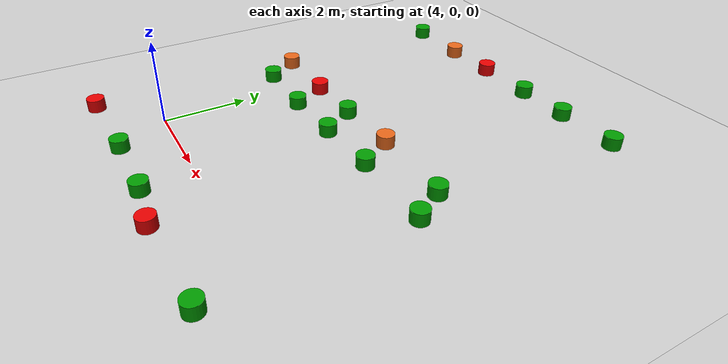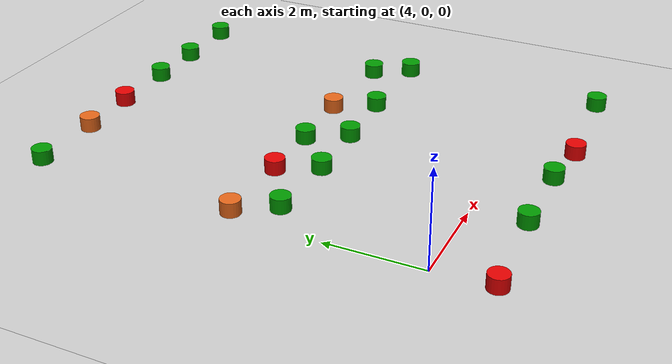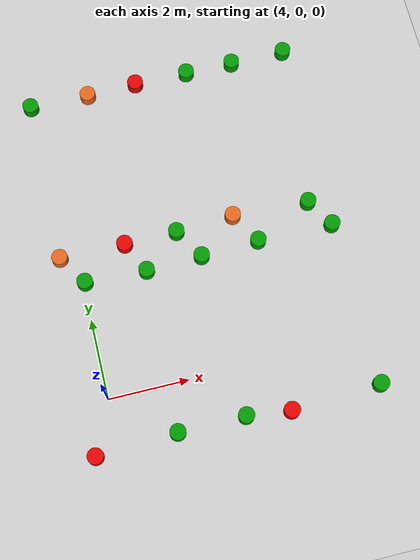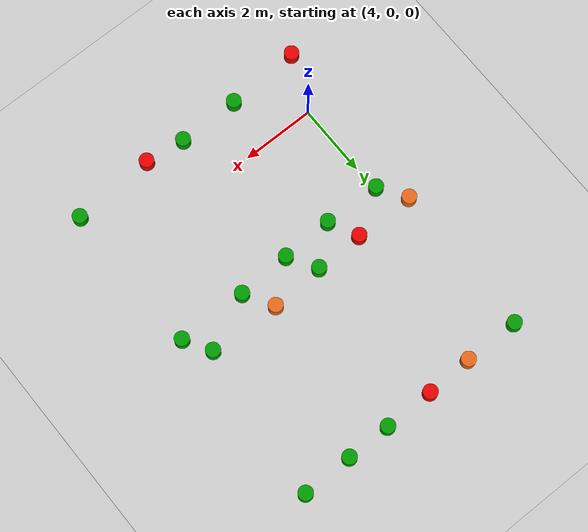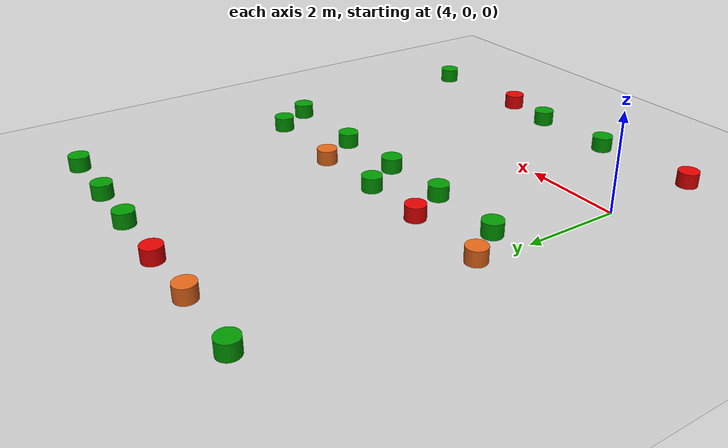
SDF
<sdf version="1.7">
 <world name="default">
  <model name="ground_plane">
   <static>1</static>
   <link name="link">
    <collision name="collision">
     <geometry><plane><normal>0 0 1</normal><size>100 100</size></plane></geometry>
     <surface><friction><ode><mu>100</mu><mu2>50</mu2></ode></friction></surface>
    </collision>
    <visual name="visual">
     <cast_shadows>0</cast_shadows>
     <geometry><plane><normal>0 0 1</normal><size>100 100</size></plane></geometry>
     <material>
      <script><uri>file://media/materials/scripts/gazebo.material</uri><name>Gazebo/Grey</name></script>
     </material>
    </visual>
   </link>
  </model>
  <model name="Test_pot_green">
   <link name="link_0">
    <inertial>
     <mass>0.044841</mass>
     <inertia>
      <ixx>0.00074807</ixx>
      <ixy>0</ixy>
      <ixz>0</ixz>
      <iyy>0.00074807</iyy>
      <iyz>0</iyz>
      <izz>0.00086495</izz>
     </inertia>
    </inertial>
    <pose>3e-06 1e-06 0 0 -0 0</pose>
    <visual name="visual">
     <geometry><cylinder><radius>0.196415</radius><length>0.290612</length></cylinder></geometry>
     <material>
      <lighting>1</lighting>
      <script><uri>file://media/materials/scripts/gazebo.material</uri><name>Gazebo/Grey</name></script>
      <shader type="pixel"><normal_map>__default__</normal_map></shader>
      <diffuse>0 0.6 0 0</diffuse>
      <ambient>0.3 0.3 0.3 1</ambient>
      <specular>0.01 0.01 0.01 1</specular>
      <emissive>0 0 0 1</emissive>
     </material>
    </visual>
    <collision name="collision">
     <geometry><cylinder><radius>0.196415</radius><length>0.290612</length></cylinder></geometry>
     <surface>
      <friction>
       <ode><mu>1</mu><mu2>1</mu2><fdir1>0 0 0</fdir1><slip1>0</slip1><slip2>0</slip2></ode>
       <torsional>
        <coefficient>1</coefficient>
        <patch_radius>0</patch_radius>
        <surface_radius>0</surface_radius>
        <use_patch_radius>1</use_patch_radius>
        <ode><slip>0</slip></ode>
       </torsional>
      </friction>
      <bounce><restitution_coefficient>0</restitution_coefficient><threshold>1e+06</threshold></bounce>
      <contact>
       <collide_without_contact>0</collide_without_contact>
       <collide_without_contact_bitmask>1</collide_without_contact_bitmask>
       <collide_bitmask>1</collide_bitmask>
       <ode>
        <soft_cfm>0</soft_cfm>
        <soft_erp>0.2</soft_erp>
        <kp>1e+13</kp>
        <kd>1</kd>
        <max_vel>0.01</max_vel>
        <min_depth>0</min_depth>
       </ode>
       <bullet>
        <split_impulse>1</split_impulse>
        <split_impulse_penetration_threshold>-0.01</split_impulse_penetration_threshold>
        <soft_cfm>0</soft_cfm>
        <soft_erp>0.2</soft_erp>
        <kp>1e+13</kp>
        <kd>1</kd>
       </bullet>
      </contact>
     </surface>
    </collision>
   </link>
   <static>0</static>
   <pose>3.66478 7.67336 0.575569 3.5e-05 1e-06 -0.002797</pose>
  </model>
  <model name="Test_pot_red">
   <link name="link_0">
    <inertial>
     <mass>0.044841</mass>
     <inertia>
      <ixx>0.00074807</ixx>
      <ixy>0</ixy>
      <ixz>0</ixz>
      <iyy>0.00074807</iyy>
      <iyz>0</iyz>
      <izz>0.00086495</izz>
     </inertia>
    </inertial>
    <pose>3e-06 1e-06 -0 0 -0 0</pose>
    <visual name="visual">
     <geometry><cylinder><radius>0.196415</radius><length>0.290612</length></cylinder></geometry>
     <material>
      <lighting>1</lighting>
      <script><uri>file://media/materials/scripts/gazebo.material</uri><name>Gazebo/Grey</name></script>
      <shader type="pixel"><normal_map>__default__</normal_map></shader>
      <ambient>0.3 0.3 0.3 1</ambient>
      <diffuse>0.9 0 0 1</diffuse>
      <specular>0.01 0.01 0.01 1</specular>
      <emissive>0 0 0 1</emissive>
     </material>
    </visual>
    <collision name="collision">
     <geometry><cylinder><radius>0.196415</radius><length>0.290612</length></cylinder></geometry>
     <surface>
      <friction>
       <ode><mu>1</mu><mu2>1</mu2><fdir1>0 0 0</fdir1><slip1>0</slip1><slip2>0</slip2></ode>
       <torsional>
        <coefficient>1</coefficient>
        <patch_radius>0</patch_radius>
        <surface_radius>0</surface_radius>
        <use_patch_radius>1</use_patch_radius>
        <ode><slip>0</slip></ode>
       </torsional>
      </friction>
      <bounce><restitution_coefficient>0</restitution_coefficient><threshold>1e+06</threshold></bounce>
      <contact>
       <collide_without_contact>0</collide_without_contact>
       <collide_without_contact_bitmask>1</collide_without_contact_bitmask>
       <collide_bitmask>1</collide_bitmask>
       <ode>
        <soft_cfm>0</soft_cfm>
        <soft_erp>0.2</soft_erp>
        <kp>1e+13</kp>
        <kd>1</kd>
        <max_vel>0.01</max_vel>
        <min_depth>0</min_depth>
       </ode>
       <bullet>
        <split_impulse>1</split_impulse>
        <split_impulse_penetration_threshold>-0.01</split_impulse_penetration_threshold>
        <soft_cfm>0</soft_cfm>
        <soft_erp>0.2</soft_erp>
        <kp>1e+13</kp>
        <kd>1</kd>
       </bullet>
      </contact>
     </surface>
    </collision>
   </link>
   <static>0</static>
   <pose>6.40214 7.70189 0.575568 3e-06 1e-06 -0.004789</pose>
  </model>
  <model name="Test_pot_orange">
   <link name="link_0">
    <inertial>
     <mass>0.044841</mass>
     <inertia>
      <ixx>0.00074807</ixx>
      <ixy>0</ixy>
      <ixz>0</ixz>
      <iyy>0.00074807</iyy>
      <iyz>0</iyz>
      <izz>0.00086495</izz>
     </inertia>
    </inertial>
    <pose>3e-06 1e-06 -0 0 -0 0</pose>
    <visual name="visual">
     <geometry><cylinder><radius>0.196415</radius><length>0.290612</length></cylinder></geometry>
     <material>
      <lighting>1</lighting>
      <script><uri>file://media/materials/scripts/gazebo.material</uri><name>Gazebo/Grey</name></script>
      <shader type="pixel"><normal_map>__default__</normal_map></shader>
      <ambient>0.3 0.3 0.3 1</ambient>
      <diffuse>0.9 0.4 0.1 1</diffuse>
      <specular>0.01 0.01 0.01 1</specular>
      <emissive>0 0 0 1</emissive>
     </material>
    </visual>
    <collision name="collision">
     <geometry><cylinder><radius>0.196415</radius><length>0.290612</length></cylinder></geometry>
     <surface>
      <friction>
       <ode><mu>1</mu><mu2>1</mu2><fdir1>0 0 0</fdir1><slip1>0</slip1><slip2>0</slip2></ode>
       <torsional>
        <coefficient>1</coefficient>
        <patch_radius>0</patch_radius>
        <surface_radius>0</surface_radius>
        <use_patch_radius>1</use_patch_radius>
        <ode><slip>0</slip></ode>
       </torsional>
      </friction>
      <bounce><restitution_coefficient>0</restitution_coefficient><threshold>1e+06</threshold></bounce>
      <contact>
       <collide_without_contact>0</collide_without_contact>
       <collide_without_contact_bitmask>1</collide_without_contact_bitmask>
       <collide_bitmask>1</collide_bitmask>
       <ode>
        <soft_cfm>0</soft_cfm>
        <soft_erp>0.2</soft_erp>
        <kp>1e+13</kp>
        <kd>1</kd>
        <max_vel>0.01</max_vel>
        <min_depth>0</min_depth>
       </ode>
       <bullet>
        <split_impulse>1</split_impulse>
        <split_impulse_penetration_threshold>-0.01</split_impulse_penetration_threshold>
        <soft_cfm>0</soft_cfm>
        <soft_erp>0.2</soft_erp>
        <kp>1e+13</kp>
        <kd>1</kd>
       </bullet>
      </contact>
     </surface>
    </collision>
   </link>
   <static>0</static>
   <pose>5.14852 7.66622 0.575578 -3.6e-05 -4e-06 -0.002668</pose>
  </model>
  <model name="Test_pot_green_clone">
   <link name="link_0">
    <inertial>
     <mass>0.044841</mass>
     <inertia>
      <ixx>0.00074807</ixx>
      <ixy>0</ixy>
      <ixz>0</ixz>
      <iyy>0.00074807</iyy>
      <iyz>0</iyz>
      <izz>0.00086495</izz>
     </inertia>
    </inertial>
    <pose>3e-06 1e-06 0 0 -0 0</pose>
    <visual name="visual">
     <geometry><cylinder><radius>0.196415</radius><length>0.290612</length></cylinder></geometry>
     <material>
      <lighting>1</lighting>
      <script><uri>file://media/materials/scripts/gazebo.material</uri><name>Gazebo/Grey</name></script>
      <shader type="pixel"><normal_map>__default__</normal_map></shader>
      <diffuse>0 0.6 0 0</diffuse>
      <ambient>0.3 0.3 0.3 1</ambient>
      <specular>0.01 0.01 0.01 1</specular>
      <emissive>0 0 0 1</emissive>
     </material>
    </visual>
    <collision name="collision">
     <geometry><cylinder><radius>0.196415</radius><length>0.290612</length></cylinder></geometry>
     <surface>
      <friction>
       <ode><mu>1</mu><mu2>1</mu2><fdir1>0 0 0</fdir1><slip1>0</slip1><slip2>0</slip2></ode>
       <torsional>
        <coefficient>1</coefficient>
        <patch_radius>0</patch_radius>
        <surface_radius>0</surface_radius>
        <use_patch_radius>1</use_patch_radius>
        <ode><slip>0</slip></ode>
       </torsional>
      </friction>
      <bounce><restitution_coefficient>0</restitution_coefficient><threshold>1e+06</threshold></bounce>
      <contact>
       <collide_without_contact>0</collide_without_contact>
       <collide_without_contact_bitmask>1</collide_without_contact_bitmask>
       <collide_bitmask>1</collide_bitmask>
       <ode>
        <soft_cfm>0</soft_cfm>
        <soft_erp>0.2</soft_erp>
        <kp>1e+13</kp>
        <kd>1</kd>
        <max_vel>0.01</max_vel>
        <min_depth>0</min_depth>
       </ode>
       <bullet>
        <split_impulse>1</split_impulse>
        <split_impulse_penetration_threshold>-0.01</split_impulse_penetration_threshold>
        <soft_cfm>0</soft_cfm>
        <soft_erp>0.2</soft_erp>
        <kp>1e+13</kp>
        <kd>1</kd>
       </bullet>
      </contact>
     </surface>
    </collision>
   </link>
   <static>0</static>
   <pose>7.74714 7.70175 0.575592 1.6e-05 5e-06 0.000895</pose>
  </model>
  <model name="Test_pot_green_clone_0">
   <link name="link_0">
    <inertial>
     <mass>0.044841</mass>
     <inertia>
      <ixx>0.00074807</ixx>
      <ixy>0</ixy>
      <ixz>0</ixz>
      <iyy>0.00074807</iyy>
      <iyz>0</iyz>
      <izz>0.00086495</izz>
     </inertia>
    </inertial>
    <pose>3e-06 1e-06 0 0 -0 0</pose>
    <visual name="visual">
     <geometry><cylinder><radius>0.196415</radius><length>0.290612</length></cylinder></geometry>
     <material>
      <lighting>1</lighting>
      <script><uri>file://media/materials/scripts/gazebo.material</uri><name>Gazebo/Grey</name></script>
      <shader type="pixel"><normal_map>__default__</normal_map></shader>
      <diffuse>0 0.6 0 0</diffuse>
      <ambient>0.3 0.3 0.3 1</ambient>
      <specular>0.01 0.01 0.01 1</specular>
      <emissive>0 0 0 1</emissive>
     </material>
    </visual>
    <collision name="collision">
     <geometry><cylinder><radius>0.196415</radius><length>0.290612</length></cylinder></geometry>
     <surface>
      <friction>
       <ode><mu>1</mu><mu2>1</mu2><fdir1>0 0 0</fdir1><slip1>0</slip1><slip2>0</slip2></ode>
       <torsional>
        <coefficient>1</coefficient>
        <patch_radius>0</patch_radius>
        <surface_radius>0</surface_radius>
        <use_patch_radius>1</use_patch_radius>
        <ode><slip>0</slip></ode>
       </torsional>
      </friction>
      <bounce><restitution_coefficient>0</restitution_coefficient><threshold>1e+06</threshold></bounce>
      <contact>
       <collide_without_contact>0</collide_without_contact>
       <collide_without_contact_bitmask>1</collide_without_contact_bitmask>
       <collide_bitmask>1</collide_bitmask>
       <ode>
        <soft_cfm>0</soft_cfm>
        <soft_erp>0.2</soft_erp>
        <kp>1e+13</kp>
        <kd>1</kd>
        <max_vel>0.01</max_vel>
        <min_depth>0</min_depth>
       </ode>
       <bullet>
        <split_impulse>1</split_impulse>
        <split_impulse_penetration_threshold>-0.01</split_impulse_penetration_threshold>
        <soft_cfm>0</soft_cfm>
        <soft_erp>0.2</soft_erp>
        <kp>1e+13</kp>
        <kd>1</kd>
       </bullet>
      </contact>
     </surface>
    </collision>
   </link>
   <static>0</static>
   <pose>8.95 7.70055 0.575573 -2.3e-05 -2e-06 -0.001644</pose>
  </model>
  <model name="Test_pot_green_clone_1">
   <link name="link_0">
    <inertial>
     <mass>0.044841</mass>
     <inertia>
      <ixx>0.00074807</ixx>
      <ixy>0</ixy>
      <ixz>0</ixz>
      <iyy>0.00074807</iyy>
      <iyz>0</iyz>
      <izz>0.00086495</izz>
     </inertia>
    </inertial>
    <pose>3e-06 1e-06 0 0 -0 0</pose>
    <visual name="visual">
     <geometry><cylinder><radius>0.196415</radius><length>0.290612</length></cylinder></geometry>
     <material>
      <lighting>1</lighting>
      <script><uri>file://media/materials/scripts/gazebo.material</uri><name>Gazebo/Grey</name></script>
      <shader type="pixel"><normal_map>__default__</normal_map></shader>
      <diffuse>0 0.6 0 0</diffuse>
      <ambient>0.3 0.3 0.3 1</ambient>
      <specular>0.01 0.01 0.01 1</specular>
      <emissive>0 0 0 1</emissive>
     </material>
    </visual>
    <collision name="collision">
     <geometry><cylinder><radius>0.196415</radius><length>0.290612</length></cylinder></geometry>
     <surface>
      <friction>
       <ode><mu>1</mu><mu2>1</mu2><fdir1>0 0 0</fdir1><slip1>0</slip1><slip2>0</slip2></ode>
       <torsional>
        <coefficient>1</coefficient>
        <patch_radius>0</patch_radius>
        <surface_radius>0</surface_radius>
        <use_patch_radius>1</use_patch_radius>
        <ode><slip>0</slip></ode>
       </torsional>
      </friction>
      <bounce><restitution_coefficient>0</restitution_coefficient><threshold>1e+06</threshold></bounce>
      <contact>
       <collide_without_contact>0</collide_without_contact>
       <collide_without_contact_bitmask>1</collide_without_contact_bitmask>
       <collide_bitmask>1</collide_bitmask>
       <ode>
        <soft_cfm>0</soft_cfm>
        <soft_erp>0.2</soft_erp>
        <kp>1e+13</kp>
        <kd>1</kd>
        <max_vel>0.01</max_vel>
        <min_depth>0</min_depth>
       </ode>
       <bullet>
        <split_impulse>1</split_impulse>
        <split_impulse_penetration_threshold>-0.01</split_impulse_penetration_threshold>
        <soft_cfm>0</soft_cfm>
        <soft_erp>0.2</soft_erp>
        <kp>1e+13</kp>
        <kd>1</kd>
       </bullet>
      </contact>
     </surface>
    </collision>
   </link>
   <static>0</static>
   <pose>10.3223 7.71373 0.575575 -3e-05 -5e-06 -0.004784</pose>
  </model>
  <model name="Test_pot_orange_clone_0">
   <link name="link_0">
    <inertial>
     <mass>0.044841</mass>
     <inertia>
      <ixx>0.00074807</ixx>
      <ixy>0</ixy>
      <ixz>0</ixz>
      <iyy>0.00074807</iyy>
      <iyz>0</iyz>
      <izz>0.00086495</izz>
     </inertia>
    </inertial>
    <pose>3e-06 1e-06 -0 0 -0 0</pose>
    <visual name="visual">
     <geometry><cylinder><radius>0.196415</radius><length>0.290612</length></cylinder></geometry>
     <material>
      <lighting>1</lighting>
      <script><uri>file://media/materials/scripts/gazebo.material</uri><name>Gazebo/Grey</name></script>
      <shader type="pixel"><normal_map>__default__</normal_map></shader>
      <ambient>0.3 0.3 0.3 1</ambient>
      <diffuse>0.9 0.4 0.1 1</diffuse>
      <specular>0.01 0.01 0.01 1</specular>
      <emissive>0 0 0 1</emissive>
     </material>
    </visual>
    <collision name="collision">
     <geometry><cylinder><radius>0.196415</radius><length>0.290612</length></cylinder></geometry>
     <surface>
      <friction>
       <ode><mu>1</mu><mu2>1</mu2><fdir1>0 0 0</fdir1><slip1>0</slip1><slip2>0</slip2></ode>
       <torsional>
        <coefficient>1</coefficient>
        <patch_radius>0</patch_radius>
        <surface_radius>0</surface_radius>
        <use_patch_radius>1</use_patch_radius>
        <ode><slip>0</slip></ode>
       </torsional>
      </friction>
      <bounce><restitution_coefficient>0</restitution_coefficient><threshold>1e+06</threshold></bounce>
      <contact>
       <collide_without_contact>0</collide_without_contact>
       <collide_without_contact_bitmask>1</collide_without_contact_bitmask>
       <collide_bitmask>1</collide_bitmask>
       <ode>
        <soft_cfm>0</soft_cfm>
        <soft_erp>0.2</soft_erp>
        <kp>1e+13</kp>
        <kd>1</kd>
        <max_vel>0.01</max_vel>
        <min_depth>0</min_depth>
       </ode>
       <bullet>
        <split_impulse>1</split_impulse>
        <split_impulse_penetration_threshold>-0.01</split_impulse_penetration_threshold>
        <soft_cfm>0</soft_cfm>
        <soft_erp>0.2</soft_erp>
        <kp>1e+13</kp>
        <kd>1</kd>
       </bullet>
      </contact>
     </surface>
    </collision>
   </link>
   <static>0</static>
   <pose>3.59683 3.54736 0.57558 -1.1e-05 1e-06 -9e-06</pose>
  </model>
  <model name="Test_pot_orange_clone_1">
   <link name="link_0">
    <inertial>
     <mass>0.044841</mass>
     <inertia>
      <ixx>0.00074807</ixx>
      <ixy>0</ixy>
      <ixz>0</ixz>
      <iyy>0.00074807</iyy>
      <iyz>0</iyz>
      <izz>0.00086495</izz>
     </inertia>
    </inertial>
    <pose>3e-06 1e-06 -0 0 -0 0</pose>
    <visual name="visual">
     <geometry><cylinder><radius>0.196415</radius><length>0.290612</length></cylinder></geometry>
     <material>
      <lighting>1</lighting>
      <script><uri>file://media/materials/scripts/gazebo.material</uri><name>Gazebo/Grey</name></script>
      <shader type="pixel"><normal_map>__default__</normal_map></shader>
      <ambient>0.3 0.3 0.3 1</ambient>
      <diffuse>0.9 0.4 0.1 1</diffuse>
      <specular>0.01 0.01 0.01 1</specular>
      <emissive>0 0 0 1</emissive>
     </material>
    </visual>
    <collision name="collision">
     <geometry><cylinder><radius>0.196415</radius><length>0.290612</length></cylinder></geometry>
     <surface>
      <friction>
       <ode><mu>1</mu><mu2>1</mu2><fdir1>0 0 0</fdir1><slip1>0</slip1><slip2>0</slip2></ode>
       <torsional>
        <coefficient>1</coefficient>
        <patch_radius>0</patch_radius>
        <surface_radius>0</surface_radius>
        <use_patch_radius>1</use_patch_radius>
        <ode><slip>0</slip></ode>
       </torsional>
      </friction>
      <bounce><restitution_coefficient>0</restitution_coefficient><threshold>1e+06</threshold></bounce>
      <contact>
       <collide_without_contact>0</collide_without_contact>
       <collide_without_contact_bitmask>1</collide_without_contact_bitmask>
       <collide_bitmask>1</collide_bitmask>
       <ode>
        <soft_cfm>0</soft_cfm>
        <soft_erp>0.2</soft_erp>
        <kp>1e+13</kp>
        <kd>1</kd>
        <max_vel>0.01</max_vel>
        <min_depth>0</min_depth>
       </ode>
       <bullet>
        <split_impulse>1</split_impulse>
        <split_impulse_penetration_threshold>-0.01</split_impulse_penetration_threshold>
        <soft_cfm>0</soft_cfm>
        <soft_erp>0.2</soft_erp>
        <kp>1e+13</kp>
        <kd>1</kd>
       </bullet>
      </contact>
     </surface>
    </collision>
   </link>
   <static>0</static>
   <pose>7.97331 3.6356 0.575589 3.4e-05 -5e-06 0.005156</pose>
  </model>
  <model name="Test_pot_red_clone_1">
   <link name="link_0">
    <inertial>
     <mass>0.044841</mass>
     <inertia>
      <ixx>0.00074807</ixx>
      <ixy>0</ixy>
      <ixz>0</ixz>
      <iyy>0.00074807</iyy>
      <iyz>0</iyz>
      <izz>0.00086495</izz>
     </inertia>
    </inertial>
    <pose>3e-06 1e-06 -0 0 -0 0</pose>
    <visual name="visual">
     <geometry><cylinder><radius>0.196415</radius><length>0.290612</length></cylinder></geometry>
     <material>
      <lighting>1</lighting>
      <script><uri>file://media/materials/scripts/gazebo.material</uri><name>Gazebo/Grey</name></script>
      <shader type="pixel"><normal_map>__default__</normal_map></shader>
      <ambient>0.3 0.3 0.3 1</ambient>
      <diffuse>0.9 0 0 1</diffuse>
      <specular>0.01 0.01 0.01 1</specular>
      <emissive>0 0 0 1</emissive>
     </material>
    </visual>
    <collision name="collision">
     <geometry><cylinder><radius>0.196415</radius><length>0.290612</length></cylinder></geometry>
     <surface>
      <friction>
       <ode><mu>1</mu><mu2>1</mu2><fdir1>0 0 0</fdir1><slip1>0</slip1><slip2>0</slip2></ode>
       <torsional>
        <coefficient>1</coefficient>
        <patch_radius>0</patch_radius>
        <surface_radius>0</surface_radius>
        <use_patch_radius>1</use_patch_radius>
        <ode><slip>0</slip></ode>
       </torsional>
      </friction>
      <bounce><restitution_coefficient>0</restitution_coefficient><threshold>1e+06</threshold></bounce>
      <contact>
       <collide_without_contact>0</collide_without_contact>
       <collide_without_contact_bitmask>1</collide_without_contact_bitmask>
       <collide_bitmask>1</collide_bitmask>
       <ode>
        <soft_cfm>0</soft_cfm>
        <soft_erp>0.2</soft_erp>
        <kp>1e+13</kp>
        <kd>1</kd>
        <max_vel>0.01</max_vel>
        <min_depth>0</min_depth>
       </ode>
       <bullet>
        <split_impulse>1</split_impulse>
        <split_impulse_penetration_threshold>-0.01</split_impulse_penetration_threshold>
        <soft_cfm>0</soft_cfm>
        <soft_erp>0.2</soft_erp>
        <kp>1e+13</kp>
        <kd>1</kd>
       </bullet>
      </contact>
     </surface>
    </collision>
   </link>
   <static>0</static>
   <pose>5.21374 3.53401 0.57558 -1.2e-05 -3e-06 0.004102</pose>
  </model>
  <model name="Test_pot_red_clone_4">
   <link name="link_0">
    <inertial>
     <mass>0.044841</mass>
     <inertia>
      <ixx>0.00074807</ixx>
      <ixy>0</ixy>
      <ixz>0</ixz>
      <iyy>0.00074807</iyy>
      <iyz>0</iyz>
      <izz>0.00086495</izz>
     </inertia>
    </inertial>
    <pose>3e-06 1e-06 -0 0 -0 0</pose>
    <visual name="visual">
     <geometry><cylinder><radius>0.196415</radius><length>0.290612</length></cylinder></geometry>
     <material>
      <lighting>1</lighting>
      <script><uri>file://media/materials/scripts/gazebo.material</uri><name>Gazebo/Grey</name></script>
      <shader type="pixel"><normal_map>__default__</normal_map></shader>
      <ambient>0.3 0.3 0.3 1</ambient>
      <diffuse>0.9 0 0 1</diffuse>
      <specular>0.01 0.01 0.01 1</specular>
      <emissive>0 0 0 1</emissive>
     </material>
    </visual>
    <collision name="collision">
     <geometry><cylinder><radius>0.196415</radius><length>0.290612</length></cylinder></geometry>
     <surface>
      <friction>
       <ode><mu>1</mu><mu2>1</mu2><fdir1>0 0 0</fdir1><slip1>0</slip1><slip2>0</slip2></ode>
       <torsional>
        <coefficient>1</coefficient>
        <patch_radius>0</patch_radius>
        <surface_radius>0</surface_radius>
        <use_patch_radius>1</use_patch_radius>
        <ode><slip>0</slip></ode>
       </torsional>
      </friction>
      <bounce><restitution_coefficient>0</restitution_coefficient><threshold>1e+06</threshold></bounce>
      <contact>
       <collide_without_contact>0</collide_without_contact>
       <collide_without_contact_bitmask>1</collide_without_contact_bitmask>
       <collide_bitmask>1</collide_bitmask>
       <ode>
        <soft_cfm>0</soft_cfm>
        <soft_erp>0.2</soft_erp>
        <kp>1e+13</kp>
        <kd>1</kd>
        <max_vel>0.01</max_vel>
        <min_depth>0</min_depth>
       </ode>
       <bullet>
        <split_impulse>1</split_impulse>
        <split_impulse_penetration_threshold>-0.01</split_impulse_penetration_threshold>
        <soft_cfm>0</soft_cfm>
        <soft_erp>0.2</soft_erp>
        <kp>1e+13</kp>
        <kd>1</kd>
       </bullet>
      </contact>
     </surface>
    </collision>
   </link>
   <static>0</static>
   <pose>3.46294 -1.34132 0.575594 -3.4e-05 4e-06 0.001033</pose>
  </model>
  <model name="Test_pot_red_clone_5">
   <link name="link_0">
    <inertial>
     <mass>0.044841</mass>
     <inertia>
      <ixx>0.00074807</ixx>
      <ixy>0</ixy>
      <ixz>0</ixz>
      <iyy>0.00074807</iyy>
      <iyz>0</iyz>
      <izz>0.00086495</izz>
     </inertia>
    </inertial>
    <pose>3e-06 1e-06 -0 0 -0 0</pose>
    <visual name="visual">
     <geometry><cylinder><radius>0.196415</radius><length>0.290612</length></cylinder></geometry>
     <material>
      <lighting>1</lighting>
      <script><uri>file://media/materials/scripts/gazebo.material</uri><name>Gazebo/Grey</name></script>
      <shader type="pixel"><normal_map>__default__</normal_map></shader>
      <ambient>0.3 0.3 0.3 1</ambient>
      <diffuse>0.9 0 0 1</diffuse>
      <specular>0.01 0.01 0.01 1</specular>
      <emissive>0 0 0 1</emissive>
     </material>
    </visual>
    <collision name="collision">
     <geometry><cylinder><radius>0.196415</radius><length>0.290612</length></cylinder></geometry>
     <surface>
      <friction>
       <ode><mu>1</mu><mu2>1</mu2><fdir1>0 0 0</fdir1><slip1>0</slip1><slip2>0</slip2></ode>
       <torsional>
        <coefficient>1</coefficient>
        <patch_radius>0</patch_radius>
        <surface_radius>0</surface_radius>
        <use_patch_radius>1</use_patch_radius>
        <ode><slip>0</slip></ode>
       </torsional>
      </friction>
      <bounce><restitution_coefficient>0</restitution_coefficient><threshold>1e+06</threshold></bounce>
      <contact>
       <collide_without_contact>0</collide_without_contact>
       <collide_without_contact_bitmask>1</collide_without_contact_bitmask>
       <collide_bitmask>1</collide_bitmask>
       <ode>
        <soft_cfm>0</soft_cfm>
        <soft_erp>0.2</soft_erp>
        <kp>1e+13</kp>
        <kd>1</kd>
        <max_vel>0.01</max_vel>
        <min_depth>0</min_depth>
       </ode>
       <bullet>
        <split_impulse>1</split_impulse>
        <split_impulse_penetration_threshold>-0.01</split_impulse_penetration_threshold>
        <soft_cfm>0</soft_cfm>
        <soft_erp>0.2</soft_erp>
        <kp>1e+13</kp>
        <kd>1</kd>
       </bullet>
      </contact>
     </surface>
    </collision>
   </link>
   <static>0</static>
   <pose>8.15532 -1.36543 0.575598 -5.7e-05 -3e-06 0.000589</pose>
  </model>
  <model name="Test_pot_green_clone_8">
   <link name="link_0">
    <inertial>
     <mass>0.044841</mass>
     <inertia>
      <ixx>0.00074807</ixx>
      <ixy>0</ixy>
      <ixz>0</ixz>
      <iyy>0.00074807</iyy>
      <iyz>0</iyz>
      <izz>0.00086495</izz>
     </inertia>
    </inertial>
    <pose>3e-06 1e-06 0 0 -0 0</pose>
    <visual name="visual">
     <geometry><cylinder><radius>0.196415</radius><length>0.290612</length></cylinder></geometry>
     <material>
      <lighting>1</lighting>
      <script><uri>file://media/materials/scripts/gazebo.material</uri><name>Gazebo/Grey</name></script>
      <shader type="pixel"><normal_map>__default__</normal_map></shader>
      <diffuse>0 0.6 0 0</diffuse>
      <ambient>0.3 0.3 0.3 1</ambient>
      <specular>0.01 0.01 0.01 1</specular>
      <emissive>0 0 0 1</emissive>
     </material>
    </visual>
    <collision name="collision">
     <geometry><cylinder><radius>0.196415</radius><length>0.290612</length></cylinder></geometry>
     <surface>
      <friction>
       <ode><mu>1</mu><mu2>1</mu2><fdir1>0 0 0</fdir1><slip1>0</slip1><slip2>0</slip2></ode>
       <torsional>
        <coefficient>1</coefficient>
        <patch_radius>0</patch_radius>
        <surface_radius>0</surface_radius>
        <use_patch_radius>1</use_patch_radius>
        <ode><slip>0</slip></ode>
       </torsional>
      </friction>
      <bounce><restitution_coefficient>0</restitution_coefficient><threshold>1e+06</threshold></bounce>
      <contact>
       <collide_without_contact>0</collide_without_contact>
       <collide_without_contact_bitmask>1</collide_without_contact_bitmask>
       <collide_bitmask>1</collide_bitmask>
       <ode>
        <soft_cfm>0</soft_cfm>
        <soft_erp>0.2</soft_erp>
        <kp>1e+13</kp>
        <kd>1</kd>
        <max_vel>0.01</max_vel>
        <min_depth>0</min_depth>
       </ode>
       <bullet>
        <split_impulse>1</split_impulse>
        <split_impulse_penetration_threshold>-0.01</split_impulse_penetration_threshold>
        <soft_cfm>0</soft_cfm>
        <soft_erp>0.2</soft_erp>
        <kp>1e+13</kp>
        <kd>1</kd>
       </bullet>
      </contact>
     </surface>
    </collision>
   </link>
   <static>0</static>
   <pose>4.07171 2.8133 0.575458 -1.8e-05 -2.3e-05 -0.002015</pose>
  </model>
  <model name="Test_pot_green_clone_9">
   <link name="link_0">
    <inertial>
     <mass>0.044841</mass>
     <inertia>
      <ixx>0.00074807</ixx>
      <ixy>0</ixy>
      <ixz>0</ixz>
      <iyy>0.00074807</iyy>
      <iyz>0</iyz>
      <izz>0.00086495</izz>
     </inertia>
    </inertial>
    <pose>3e-06 1e-06 0 0 -0 0</pose>
    <visual name="visual">
     <geometry><cylinder><radius>0.196415</radius><length>0.290612</length></cylinder></geometry>
     <material>
      <lighting>1</lighting>
      <script><uri>file://media/materials/scripts/gazebo.material</uri><name>Gazebo/Grey</name></script>
      <shader type="pixel"><normal_map>__default__</normal_map></shader>
      <diffuse>0 0.6 0 0</diffuse>
      <ambient>0.3 0.3 0.3 1</ambient>
      <specular>0.01 0.01 0.01 1</specular>
      <emissive>0 0 0 1</emissive>
     </material>
    </visual>
    <collision name="collision">
     <geometry><cylinder><radius>0.196415</radius><length>0.290612</length></cylinder></geometry>
     <surface>
      <friction>
       <ode><mu>1</mu><mu2>1</mu2><fdir1>0 0 0</fdir1><slip1>0</slip1><slip2>0</slip2></ode>
       <torsional>
        <coefficient>1</coefficient>
        <patch_radius>0</patch_radius>
        <surface_radius>0</surface_radius>
        <use_patch_radius>1</use_patch_radius>
        <ode><slip>0</slip></ode>
       </torsional>
      </friction>
      <bounce><restitution_coefficient>0</restitution_coefficient><threshold>1e+06</threshold></bounce>
      <contact>
       <collide_without_contact>0</collide_without_contact>
       <collide_without_contact_bitmask>1</collide_without_contact_bitmask>
       <collide_bitmask>1</collide_bitmask>
       <ode>
        <soft_cfm>0</soft_cfm>
        <soft_erp>0.2</soft_erp>
        <kp>1e+13</kp>
        <kd>1</kd>
        <max_vel>0.01</max_vel>
        <min_depth>0</min_depth>
       </ode>
       <bullet>
        <split_impulse>1</split_impulse>
        <split_impulse_penetration_threshold>-0.01</split_impulse_penetration_threshold>
        <soft_cfm>0</soft_cfm>
        <soft_erp>0.2</soft_erp>
        <kp>1e+13</kp>
        <kd>1</kd>
       </bullet>
      </contact>
     </surface>
    </collision>
   </link>
   <static>0</static>
   <pose>5.59406 2.75615 0.575578 -3.1e-05 -4e-06 -0.001332</pose>
  </model>
  <model name="Test_pot_green_clone_10">
   <link name="link_0">
    <inertial>
     <mass>0.044841</mass>
     <inertia>
      <ixx>0.00074807</ixx>
      <ixy>0</ixy>
      <ixz>0</ixz>
      <iyy>0.00074807</iyy>
      <iyz>0</iyz>
      <izz>0.00086495</izz>
     </inertia>
    </inertial>
    <pose>3e-06 1e-06 0 0 -0 0</pose>
    <visual name="visual">
     <geometry><cylinder><radius>0.196415</radius><length>0.290612</length></cylinder></geometry>
     <material>
      <lighting>1</lighting>
      <script><uri>file://media/materials/scripts/gazebo.material</uri><name>Gazebo/Grey</name></script>
      <shader type="pixel"><normal_map>__default__</normal_map></shader>
      <diffuse>0 0.6 0 0</diffuse>
      <ambient>0.3 0.3 0.3 1</ambient>
      <specular>0.01 0.01 0.01 1</specular>
      <emissive>0 0 0 1</emissive>
     </material>
    </visual>
    <collision name="collision">
     <geometry><cylinder><radius>0.196415</radius><length>0.290612</length></cylinder></geometry>
     <surface>
      <friction>
       <ode><mu>1</mu><mu2>1</mu2><fdir1>0 0 0</fdir1><slip1>0</slip1><slip2>0</slip2></ode>
       <torsional>
        <coefficient>1</coefficient>
        <patch_radius>0</patch_radius>
        <surface_radius>0</surface_radius>
        <use_patch_radius>1</use_patch_radius>
        <ode><slip>0</slip></ode>
       </torsional>
      </friction>
      <bounce><restitution_coefficient>0</restitution_coefficient><threshold>1e+06</threshold></bounce>
      <contact>
       <collide_without_contact>0</collide_without_contact>
       <collide_without_contact_bitmask>1</collide_without_contact_bitmask>
       <collide_bitmask>1</collide_bitmask>
       <ode>
        <soft_cfm>0</soft_cfm>
        <soft_erp>0.2</soft_erp>
        <kp>1e+13</kp>
        <kd>1</kd>
        <max_vel>0.01</max_vel>
        <min_depth>0</min_depth>
       </ode>
       <bullet>
        <split_impulse>1</split_impulse>
        <split_impulse_penetration_threshold>-0.01</split_impulse_penetration_threshold>
        <soft_cfm>0</soft_cfm>
        <soft_erp>0.2</soft_erp>
        <kp>1e+13</kp>
        <kd>1</kd>
       </bullet>
      </contact>
     </surface>
    </collision>
   </link>
   <static>0</static>
   <pose>6.52343 3.55533 0.575586 2e-05 -1.4e-05 0.00071</pose>
  </model>
  <model name="Test_pot_green_clone_11">
   <link name="link_0">
    <inertial>
     <mass>0.044841</mass>
     <inertia>
      <ixx>0.00074807</ixx>
      <ixy>0</ixy>
      <ixz>0</ixz>
      <iyy>0.00074807</iyy>
      <iyz>0</iyz>
      <izz>0.00086495</izz>
     </inertia>
    </inertial>
    <pose>3e-06 1e-06 0 0 -0 0</pose>
    <visual name="visual">
     <geometry><cylinder><radius>0.196415</radius><length>0.290612</length></cylinder></geometry>
     <material>
      <lighting>1</lighting>
      <script><uri>file://media/materials/scripts/gazebo.material</uri><name>Gazebo/Grey</name></script>
      <shader type="pixel"><normal_map>__default__</normal_map></shader>
      <diffuse>0 0.6 0 0</diffuse>
      <ambient>0.3 0.3 0.3 1</ambient>
      <specular>0.01 0.01 0.01 1</specular>
      <emissive>0 0 0 1</emissive>
     </material>
    </visual>
    <collision name="collision">
     <geometry><cylinder><radius>0.196415</radius><length>0.290612</length></cylinder></geometry>
     <surface>
      <friction>
       <ode><mu>1</mu><mu2>1</mu2><fdir1>0 0 0</fdir1><slip1>0</slip1><slip2>0</slip2></ode>
       <torsional>
        <coefficient>1</coefficient>
        <patch_radius>0</patch_radius>
        <surface_radius>0</surface_radius>
        <use_patch_radius>1</use_patch_radius>
        <ode><slip>0</slip></ode>
       </torsional>
      </friction>
      <bounce><restitution_coefficient>0</restitution_coefficient><threshold>1e+06</threshold></bounce>
      <contact>
       <collide_without_contact>0</collide_without_contact>
       <collide_without_contact_bitmask>1</collide_without_contact_bitmask>
       <collide_bitmask>1</collide_bitmask>
       <ode>
        <soft_cfm>0</soft_cfm>
        <soft_erp>0.2</soft_erp>
        <kp>1e+13</kp>
        <kd>1</kd>
        <max_vel>0.01</max_vel>
        <min_depth>0</min_depth>
       </ode>
       <bullet>
        <split_impulse>1</split_impulse>
        <split_impulse_penetration_threshold>-0.01</split_impulse_penetration_threshold>
        <soft_cfm>0</soft_cfm>
        <soft_erp>0.2</soft_erp>
        <kp>1e+13</kp>
        <kd>1</kd>
       </bullet>
      </contact>
     </surface>
    </collision>
   </link>
   <static>0</static>
   <pose>6.98199 2.80448 0.575453 -1.8e-05 3e-06 -0.001407</pose>
  </model>
  <model name="Test_pot_green_clone_12">
   <link name="link_0">
    <inertial>
     <mass>0.044841</mass>
     <inertia>
      <ixx>0.00074807</ixx>
      <ixy>0</ixy>
      <ixz>0</ixz>
      <iyy>0.00074807</iyy>
      <iyz>0</iyz>
      <izz>0.00086495</izz>
     </inertia>
    </inertial>
    <pose>3e-06 1e-06 0 0 -0 0</pose>
    <visual name="visual">
     <geometry><cylinder><radius>0.196415</radius><length>0.290612</length></cylinder></geometry>
     <material>
      <lighting>1</lighting>
      <script><uri>file://media/materials/scripts/gazebo.material</uri><name>Gazebo/Grey</name></script>
      <shader type="pixel"><normal_map>__default__</normal_map></shader>
      <diffuse>0 0.6 0 0</diffuse>
      <ambient>0.3 0.3 0.3 1</ambient>
      <specular>0.01 0.01 0.01 1</specular>
      <emissive>0 0 0 1</emissive>
     </material>
    </visual>
    <collision name="collision">
     <geometry><cylinder><radius>0.196415</radius><length>0.290612</length></cylinder></geometry>
     <surface>
      <friction>
       <ode><mu>1</mu><mu2>1</mu2><fdir1>0 0 0</fdir1><slip1>0</slip1><slip2>0</slip2></ode>
       <torsional>
        <coefficient>1</coefficient>
        <patch_radius>0</patch_radius>
        <surface_radius>0</surface_radius>
        <use_patch_radius>1</use_patch_radius>
        <ode><slip>0</slip></ode>
       </torsional>
      </friction>
      <bounce><restitution_coefficient>0</restitution_coefficient><threshold>1e+06</threshold></bounce>
      <contact>
       <collide_without_contact>0</collide_without_contact>
       <collide_without_contact_bitmask>1</collide_without_contact_bitmask>
       <collide_bitmask>1</collide_bitmask>
       <ode>
        <soft_cfm>0</soft_cfm>
        <soft_erp>0.2</soft_erp>
        <kp>1e+13</kp>
        <kd>1</kd>
        <max_vel>0.01</max_vel>
        <min_depth>0</min_depth>
       </ode>
       <bullet>
        <split_impulse>1</split_impulse>
        <split_impulse_penetration_threshold>-0.01</split_impulse_penetration_threshold>
        <soft_cfm>0</soft_cfm>
        <soft_erp>0.2</soft_erp>
        <kp>1e+13</kp>
        <kd>1</kd>
       </bullet>
      </contact>
     </surface>
    </collision>
   </link>
   <static>0</static>
   <pose>8.42722 2.87006 0.574526 1e-06 -2e-05 -0.00128</pose>
  </model>
  <model name="Test_pot_green_clone_13">
   <link name="link_0">
    <inertial>
     <mass>0.044841</mass>
     <inertia>
      <ixx>0.00074807</ixx>
      <ixy>0</ixy>
      <ixz>0</ixz>
      <iyy>0.00074807</iyy>
      <iyz>0</iyz>
      <izz>0.00086495</izz>
     </inertia>
    </inertial>
    <pose>3e-06 1e-06 0 0 -0 0</pose>
    <visual name="visual">
     <geometry><cylinder><radius>0.196415</radius><length>0.290612</length></cylinder></geometry>
     <material>
      <lighting>1</lighting>
      <script><uri>file://media/materials/scripts/gazebo.material</uri><name>Gazebo/Grey</name></script>
      <shader type="pixel"><normal_map>__default__</normal_map></shader>
      <diffuse>0 0.6 0 0</diffuse>
      <ambient>0.3 0.3 0.3 1</ambient>
      <specular>0.01 0.01 0.01 1</specular>
      <emissive>0 0 0 1</emissive>
     </material>
    </visual>
    <collision name="collision">
     <geometry><cylinder><radius>0.196415</radius><length>0.290612</length></cylinder></geometry>
     <surface>
      <friction>
       <ode><mu>1</mu><mu2>1</mu2><fdir1>0 0 0</fdir1><slip1>0</slip1><slip2>0</slip2></ode>
       <torsional>
        <coefficient>1</coefficient>
        <patch_radius>0</patch_radius>
        <surface_radius>0</surface_radius>
        <use_patch_radius>1</use_patch_radius>
        <ode><slip>0</slip></ode>
       </torsional>
      </friction>
      <bounce><restitution_coefficient>0</restitution_coefficient><threshold>1e+06</threshold></bounce>
      <contact>
       <collide_without_contact>0</collide_without_contact>
       <collide_without_contact_bitmask>1</collide_without_contact_bitmask>
       <collide_bitmask>1</collide_bitmask>
       <ode>
        <soft_cfm>0</soft_cfm>
        <soft_erp>0.2</soft_erp>
        <kp>1e+13</kp>
        <kd>1</kd>
        <max_vel>0.01</max_vel>
        <min_depth>0</min_depth>
       </ode>
       <bullet>
        <split_impulse>1</split_impulse>
        <split_impulse_penetration_threshold>-0.01</split_impulse_penetration_threshold>
        <soft_cfm>0</soft_cfm>
        <soft_erp>0.2</soft_erp>
        <kp>1e+13</kp>
        <kd>1</kd>
       </bullet>
      </contact>
     </surface>
    </collision>
   </link>
   <static>0</static>
   <pose>9.88125 3.55748 0.575587 2.3e-05 2e-06 0.00066</pose>
  </model>
  <model name="Test_pot_green_clone_14">
   <link name="link_0">
    <inertial>
     <mass>0.044841</mass>
     <inertia>
      <ixx>0.00074807</ixx>
      <ixy>0</ixy>
      <ixz>0</ixz>
      <iyy>0.00074807</iyy>
      <iyz>0</iyz>
      <izz>0.00086495</izz>
     </inertia>
    </inertial>
    <pose>3e-06 1e-06 0 0 -0 0</pose>
    <visual name="visual">
     <geometry><cylinder><radius>0.196415</radius><length>0.290612</length></cylinder></geometry>
     <material>
      <lighting>1</lighting>
      <script><uri>file://media/materials/scripts/gazebo.material</uri><name>Gazebo/Grey</name></script>
      <shader type="pixel"><normal_map>__default__</normal_map></shader>
      <diffuse>0 0.6 0 0</diffuse>
      <ambient>0.3 0.3 0.3 1</ambient>
      <specular>0.01 0.01 0.01 1</specular>
      <emissive>0 0 0 1</emissive>
     </material>
    </visual>
    <collision name="collision">
     <geometry><cylinder><radius>0.196415</radius><length>0.290612</length></cylinder></geometry>
     <surface>
      <friction>
       <ode><mu>1</mu><mu2>1</mu2><fdir1>0 0 0</fdir1><slip1>0</slip1><slip2>0</slip2></ode>
       <torsional>
        <coefficient>1</coefficient>
        <patch_radius>0</patch_radius>
        <surface_radius>0</surface_radius>
        <use_patch_radius>1</use_patch_radius>
        <ode><slip>0</slip></ode>
       </torsional>
      </friction>
      <bounce><restitution_coefficient>0</restitution_coefficient><threshold>1e+06</threshold></bounce>
      <contact>
       <collide_without_contact>0</collide_without_contact>
       <collide_without_contact_bitmask>1</collide_without_contact_bitmask>
       <collide_bitmask>1</collide_bitmask>
       <ode>
        <soft_cfm>0</soft_cfm>
        <soft_erp>0.2</soft_erp>
        <kp>1e+13</kp>
        <kd>1</kd>
        <max_vel>0.01</max_vel>
        <min_depth>0</min_depth>
       </ode>
       <bullet>
        <split_impulse>1</split_impulse>
        <split_impulse_penetration_threshold>-0.01</split_impulse_penetration_threshold>
        <soft_cfm>0</soft_cfm>
        <soft_erp>0.2</soft_erp>
        <kp>1e+13</kp>
        <kd>1</kd>
       </bullet>
      </contact>
     </surface>
    </collision>
   </link>
   <static>0</static>
   <pose>10.3027 2.85507 0.575514 6e-06 -1e-06 0.001485</pose>
  </model>
  <model name="Test_pot_green_clone_28">
   <link name="link_0">
    <inertial>
     <mass>0.044841</mass>
     <inertia>
      <ixx>0.00074807</ixx>
      <ixy>0</ixy>
      <ixz>0</ixz>
      <iyy>0.00074807</iyy>
      <iyz>0</iyz>
      <izz>0.00086495</izz>
     </inertia>
    </inertial>
    <pose>3e-06 1e-06 0 0 -0 0</pose>
    <visual name="visual">
     <geometry><cylinder><radius>0.196415</radius><length>0.290612</length></cylinder></geometry>
     <material>
      <lighting>1</lighting>
      <script><uri>file://media/materials/scripts/gazebo.material</uri><name>Gazebo/Grey</name></script>
      <shader type="pixel"><normal_map>__default__</normal_map></shader>
      <diffuse>0 0.6 0 0</diffuse>
      <ambient>0.3 0.3 0.3 1</ambient>
      <specular>0.01 0.01 0.01 1</specular>
      <emissive>0 0 0 1</emissive>
     </material>
    </visual>
    <collision name="collision">
     <geometry><cylinder><radius>0.196415</radius><length>0.290612</length></cylinder></geometry>
     <surface>
      <friction>
       <ode><mu>1</mu><mu2>1</mu2><fdir1>0 0 0</fdir1><slip1>0</slip1><slip2>0</slip2></ode>
       <torsional>
        <coefficient>1</coefficient>
        <patch_radius>0</patch_radius>
        <surface_radius>0</surface_radius>
        <use_patch_radius>1</use_patch_radius>
        <ode><slip>0</slip></ode>
       </torsional>
      </friction>
      <bounce><restitution_coefficient>0</restitution_coefficient><threshold>1e+06</threshold></bounce>
      <contact>
       <collide_without_contact>0</collide_without_contact>
       <collide_without_contact_bitmask>1</collide_without_contact_bitmask>
       <collide_bitmask>1</collide_bitmask>
       <ode>
        <soft_cfm>0</soft_cfm>
        <soft_erp>0.2</soft_erp>
        <kp>1e+13</kp>
        <kd>1</kd>
        <max_vel>0.01</max_vel>
        <min_depth>0</min_depth>
       </ode>
       <bullet>
        <split_impulse>1</split_impulse>
        <split_impulse_penetration_threshold>-0.01</split_impulse_penetration_threshold>
        <soft_cfm>0</soft_cfm>
        <soft_erp>0.2</soft_erp>
        <kp>1e+13</kp>
        <kd>1</kd>
       </bullet>
      </contact>
     </surface>
    </collision>
   </link>
   <static>0</static>
   <pose>5.43928 -1.24382 0.57559 -1.1e-05 -3e-06 -0.00248</pose>
  </model>
  <model name="Test_pot_green_clone_29">
   <link name="link_0">
    <inertial>
     <mass>0.044841</mass>
     <inertia>
      <ixx>0.00074807</ixx>
      <ixy>0</ixy>
      <ixz>0</ixz>
      <iyy>0.00074807</iyy>
      <iyz>0</iyz>
      <izz>0.00086495</izz>
     </inertia>
    </inertial>
    <pose>3e-06 1e-06 0 0 -0 0</pose>
    <visual name="visual">
     <geometry><cylinder><radius>0.196415</radius><length>0.290612</length></cylinder></geometry>
     <material>
      <lighting>1</lighting>
      <script><uri>file://media/materials/scripts/gazebo.material</uri><name>Gazebo/Grey</name></script>
      <shader type="pixel"><normal_map>__default__</normal_map></shader>
      <diffuse>0 0.6 0 0</diffuse>
      <ambient>0.3 0.3 0.3 1</ambient>
      <specular>0.01 0.01 0.01 1</specular>
      <emissive>0 0 0 1</emissive>
     </material>
    </visual>
    <collision name="collision">
     <geometry><cylinder><radius>0.196415</radius><length>0.290612</length></cylinder></geometry>
     <surface>
      <friction>
       <ode><mu>1</mu><mu2>1</mu2><fdir1>0 0 0</fdir1><slip1>0</slip1><slip2>0</slip2></ode>
       <torsional>
        <coefficient>1</coefficient>
        <patch_radius>0</patch_radius>
        <surface_radius>0</surface_radius>
        <use_patch_radius>1</use_patch_radius>
        <ode><slip>0</slip></ode>
       </torsional>
      </friction>
      <bounce><restitution_coefficient>0</restitution_coefficient><threshold>1e+06</threshold></bounce>
      <contact>
       <collide_without_contact>0</collide_without_contact>
       <collide_without_contact_bitmask>1</collide_without_contact_bitmask>
       <collide_bitmask>1</collide_bitmask>
       <ode>
        <soft_cfm>0</soft_cfm>
        <soft_erp>0.2</soft_erp>
        <kp>1e+13</kp>
        <kd>1</kd>
        <max_vel>0.01</max_vel>
        <min_depth>0</min_depth>
       </ode>
       <bullet>
        <split_impulse>1</split_impulse>
        <split_impulse_penetration_threshold>-0.01</split_impulse_penetration_threshold>
        <soft_cfm>0</soft_cfm>
        <soft_erp>0.2</soft_erp>
        <kp>1e+13</kp>
        <kd>1</kd>
       </bullet>
      </contact>
     </surface>
    </collision>
   </link>
   <static>0</static>
   <pose>7.08478 -1.23765 0.575592 -1.2e-05 -2.7e-05 -0.002811</pose>
  </model>
  <model name="Test_pot_green_clone_30">
   <link name="link_0">
    <inertial>
     <mass>0.044841</mass>
     <inertia>
      <ixx>0.00074807</ixx>
      <ixy>0</ixy>
      <ixz>0</ixz>
      <iyy>0.00074807</iyy>
      <iyz>0</iyz>
      <izz>0.00086495</izz>
     </inertia>
    </inertial>
    <pose>3e-06 1e-06 0 0 -0 0</pose>
    <visual name="visual">
     <geometry><cylinder><radius>0.196415</radius><length>0.290612</length></cylinder></geometry>
     <material>
      <lighting>1</lighting>
      <script><uri>file://media/materials/scripts/gazebo.material</uri><name>Gazebo/Grey</name></script>
      <shader type="pixel"><normal_map>__default__</normal_map></shader>
      <diffuse>0 0.6 0 0</diffuse>
      <ambient>0.3 0.3 0.3 1</ambient>
      <specular>0.01 0.01 0.01 1</specular>
      <emissive>0 0 0 1</emissive>
     </material>
    </visual>
    <collision name="collision">
     <geometry><cylinder><radius>0.196415</radius><length>0.290612</length></cylinder></geometry>
     <surface>
      <friction>
       <ode><mu>1</mu><mu2>1</mu2><fdir1>0 0 0</fdir1><slip1>0</slip1><slip2>0</slip2></ode>
       <torsional>
        <coefficient>1</coefficient>
        <patch_radius>0</patch_radius>
        <surface_radius>0</surface_radius>
        <use_patch_radius>1</use_patch_radius>
        <ode><slip>0</slip></ode>
       </torsional>
      </friction>
      <bounce><restitution_coefficient>0</restitution_coefficient><threshold>1e+06</threshold></bounce>
      <contact>
       <collide_without_contact>0</collide_without_contact>
       <collide_without_contact_bitmask>1</collide_without_contact_bitmask>
       <collide_bitmask>1</collide_bitmask>
       <ode>
        <soft_cfm>0</soft_cfm>
        <soft_erp>0.2</soft_erp>
        <kp>1e+13</kp>
        <kd>1</kd>
        <max_vel>0.01</max_vel>
        <min_depth>0</min_depth>
       </ode>
       <bullet>
        <split_impulse>1</split_impulse>
        <split_impulse_penetration_threshold>-0.01</split_impulse_penetration_threshold>
        <soft_cfm>0</soft_cfm>
        <soft_erp>0.2</soft_erp>
        <kp>1e+13</kp>
        <kd>1</kd>
       </bullet>
      </contact>
     </surface>
    </collision>
   </link>
   <static>0</static>
   <pose>10.3583 -1.24406 0.575637 0.000215 0.000203 -0.002766</pose>
  </model>
 </world>
</sdf>
